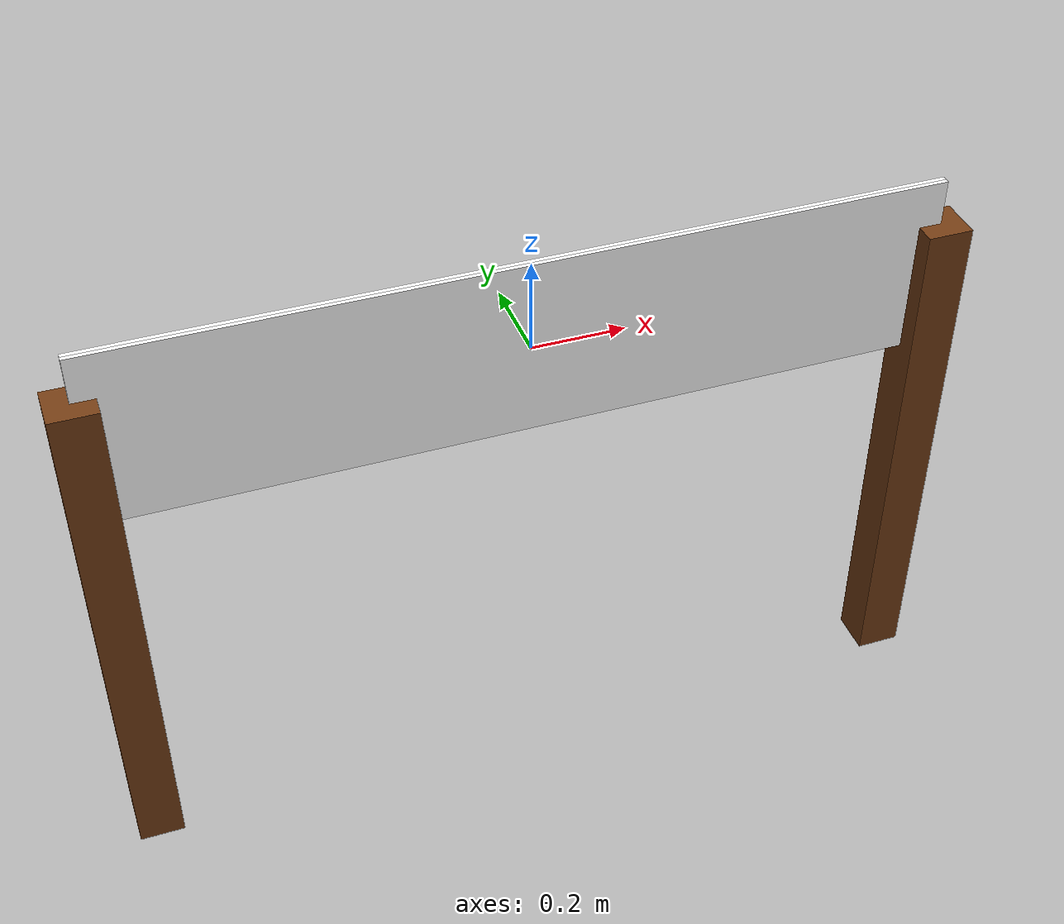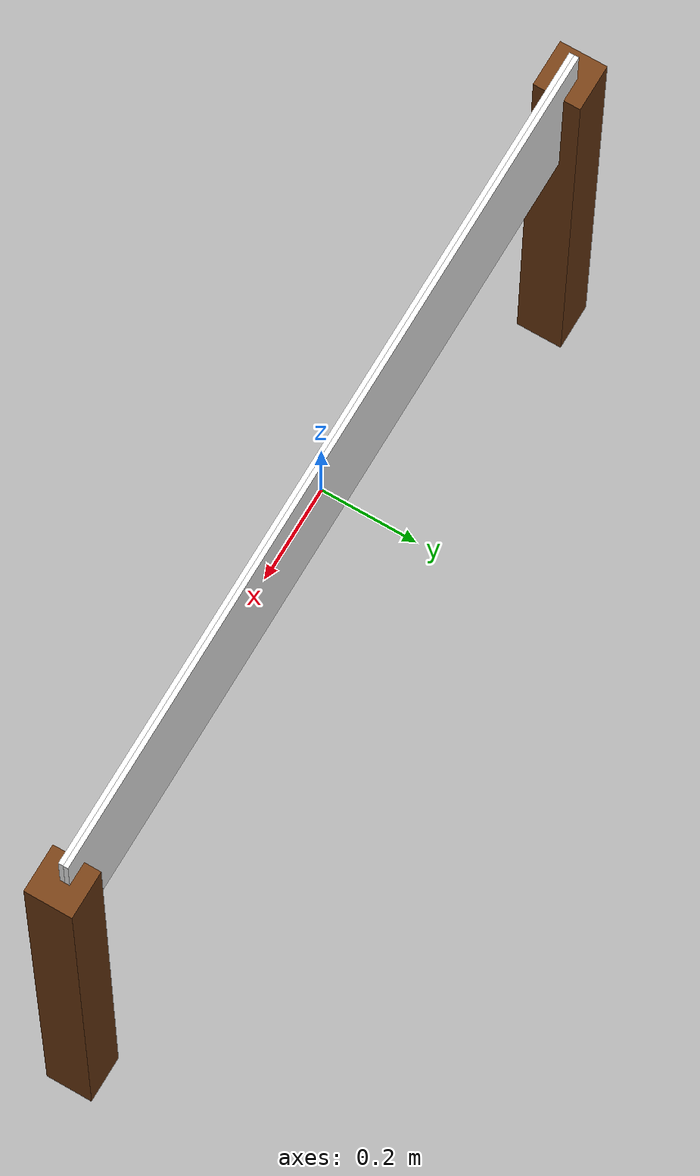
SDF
<?xml version='1.0'?>
<sdf version='1.7'>
  <model name='sign_board_10'>
    <light type="directional" name="my_light_front">
        <pose>0 2.0 0 0 0 0</pose>
        <diffuse>5.0 5.0 5.0 1</diffuse>
        <specular>0.5 0.5 0.5 1</specular>
        <attenuation>
            <range>20</range>
            <constant>1.0</constant>
            <linear>0.0</linear>
            <quadratic>0.0</quadratic>
        </attenuation>
        <direction>0 -1 0</direction>
        <cast_shadows>false</cast_shadows>
    </light>
    <link name='link_front'>
      <pose>0 0 0 0 0 0</pose>
      <visual name='visual'>
        <geometry>
          <box>
            <size>1.8 0.01 0.4</size>
          </box>
        </geometry>
        <material>
          <diffuse>1.0 1.0 1.0</diffuse>
          <specular>1.0 1.0 1.0</specular>
          <pbr>
            <metal>
              <albedo_map>materials/textures/sb_front_10.png</albedo_map>
              <emissive_map>materials/textures/sb_front_10.png</emissive_map>
            </metal>
          </pbr>
          <shader type='pixel'/>
        </material>
        <pose>0 0 0 0 0 0</pose>
        <transparency>0</transparency>
        <cast_shadows>0</cast_shadows>
      </visual>
    </link>
    <light type="directional" name="my_light_back">
        <pose>0 -2.0 0 0 0 0</pose>
        <diffuse>5.0 5.0 5.0 1</diffuse>
        <specular>0.5 0.5 0.5 1</specular>
        <attenuation>
            <range>20</range>
            <constant>1.0</constant>
            <linear>0.0</linear>
            <quadratic>0.0</quadratic>
        </attenuation>
        <direction>0 1 0</direction>
        <cast_shadows>false</cast_shadows>
    </light>
    <link name='link_back'>
      <pose>0 0.01 0 0 0 0</pose>
      <visual name='visual'>
        <geometry>
          <box>
            <size>1.8 0.01 0.4</size>
          </box>
        </geometry>
        <material>
          <diffuse>1.0 1.0 1.0</diffuse>
          <specular>1.0 1.0 1.0</specular>
          <pbr>
            <metal>
              <albedo_map>materials/textures/sb_back_10.png</albedo_map>
              <emissive_map>materials/textures/sb_back_10.png</emissive_map>
            </metal>
          </pbr>
          <shader type='pixel'/>
        </material>
        <pose>0 0 0 0 0 0</pose>
        <transparency>0</transparency>
        <cast_shadows>0</cast_shadows>
      </visual>
    </link>

    <link name="stands">
      <pose>0 0 0 0 0 0</pose>

      <visual name="left_stand_visual">
        <pose>-0.9 0 -0.5 0 0 0</pose>
        <geometry>
          <box>
            <size>0.1 0.1 1.2</size>
          </box>
        </geometry>
        <material>
          <ambient>0.45 0.24 0.08 1.0</ambient>
          <diffuse>0.45 0.24 0.08 1.0</diffuse>
          <specular>0.1 0.1 0.1 1.0</specular>
        </material>
      </visual>

      <collision name="left_stand_collision">
        <pose>-0.9 0 -0.5 0 0 0</pose>
        <geometry>
          <box>
            <size>0.1 0.1 1.2</size>
          </box>
        </geometry>
      </collision>

      <visual name="right_stand_visual">
        <pose>0.9 0 -0.5 0 0 0</pose>
        <geometry>
          <box>
            <size>0.1 0.1 1.2</size>
          </box>
        </geometry>
        <material>
          <ambient>0.45 0.24 0.08 1.0</ambient>
          <diffuse>0.45 0.24 0.08 1.0</diffuse>
          <specular>0.1 0.1 0.1 1.0</specular>
        </material>
      </visual>

      <collision name="right_stand_collision">
        <pose>0.9 0 -0.5 0 0 0</pose>
        <geometry>
          <box>
            <size>0.1 0.1 1.2</size>
          </box>
        </geometry>
      </collision>
    </link>

    <static>1</static>
  </model>
</sdf>
